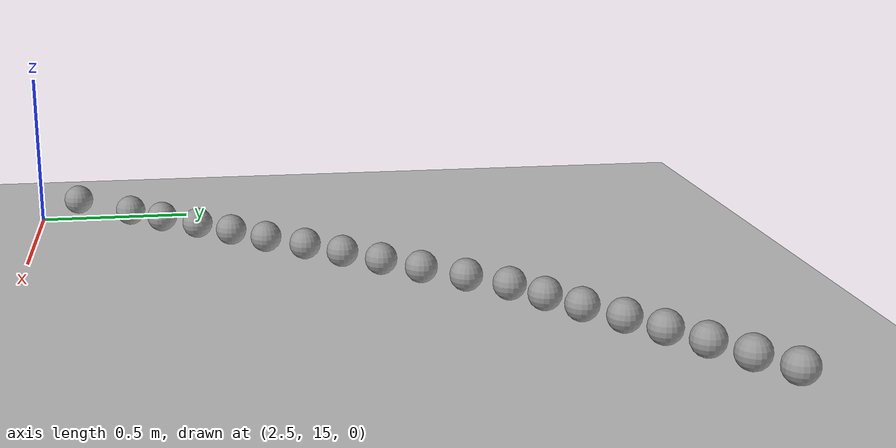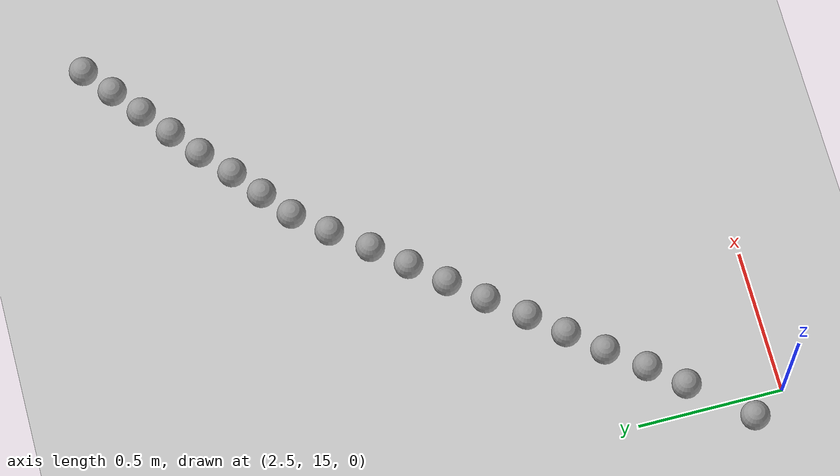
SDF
<sdf version="1.6">
 <world name="default">
  <model name="ground_plane">
   <static>1</static>
   <link name="link">
    <collision name="collision">
     <geometry><plane><normal>0 0 1</normal><size>100 100</size></plane></geometry>
     <surface><friction><ode><mu>100</mu><mu2>50</mu2></ode></friction></surface>
    </collision>
    <visual name="visual">
     <cast_shadows>0</cast_shadows>
     <geometry><plane><normal>0 0 1</normal><size>100 100</size></plane></geometry>
     <material>
      <script><uri>file://media/materials/scripts/gazebo.material</uri><name>Gazebo/Grey</name></script>
     </material>
    </visual>
   </link>
  </model>
  <model name="unit_sphere_0_79">
   <pose>2.427000 15.120000 0.050000 0 -0 0</pose>
   <link name="link">
    <inertial>
     <mass>1</mass>
     <inertia><ixx>0.1</ixx><ixy>0</ixy><ixz>0</ixz><iyy>0.1</iyy><iyz>0</iyz><izz>0.1</izz></inertia>
    </inertial>
    <collision name="collision"><geometry><sphere><radius>0.050000</radius></sphere></geometry></collision>
    <visual name="visual">
     <geometry><sphere><radius>0.050000</radius></sphere></geometry>
     <material>
      <script><name>Gazebo/Grey</name><uri>file://media/materials/scripts/gazebo.material</uri></script>
     </material>
    </visual>
   </link>
  </model>
  <model name="unit_sphere_0_80">
   <pose>2.590000 15.310000 0.050000 0 -0 0</pose>
   <link name="link">
    <inertial>
     <mass>1</mass>
     <inertia><ixx>0.1</ixx><ixy>0</ixy><ixz>0</ixz><iyy>0.1</iyy><iyz>0</iyz><izz>0.1</izz></inertia>
    </inertial>
    <collision name="collision"><geometry><sphere><radius>0.050000</radius></sphere></geometry></collision>
    <visual name="visual">
     <geometry><sphere><radius>0.050000</radius></sphere></geometry>
     <material>
      <script><name>Gazebo/Grey</name><uri>file://media/materials/scripts/gazebo.material</uri></script>
     </material>
    </visual>
   </link>
  </model>
  <model name="unit_sphere_0_81">
   <pose>2.682000 15.420000 0.050000 0 -0 0</pose>
   <link name="link">
    <inertial>
     <mass>1</mass>
     <inertia><ixx>0.1</ixx><ixy>0</ixy><ixz>0</ixz><iyy>0.1</iyy><iyz>0</iyz><izz>0.1</izz></inertia>
    </inertial>
    <collision name="collision"><geometry><sphere><radius>0.050000</radius></sphere></geometry></collision>
    <visual name="visual">
     <geometry><sphere><radius>0.050000</radius></sphere></geometry>
     <material>
      <script><name>Gazebo/Grey</name><uri>file://media/materials/scripts/gazebo.material</uri></script>
     </material>
    </visual>
   </link>
  </model>
  <model name="unit_sphere_0_82">
   <pose>2.774000 15.540000 0.050000 0 -0 0</pose>
   <link name="link">
    <inertial>
     <mass>1</mass>
     <inertia><ixx>0.1</ixx><ixy>0</ixy><ixz>0</ixz><iyy>0.1</iyy><iyz>0</iyz><izz>0.1</izz></inertia>
    </inertial>
    <collision name="collision"><geometry><sphere><radius>0.050000</radius></sphere></geometry></collision>
    <visual name="visual">
     <geometry><sphere><radius>0.050000</radius></sphere></geometry>
     <material>
      <script><name>Gazebo/Grey</name><uri>file://media/materials/scripts/gazebo.material</uri></script>
     </material>
    </visual>
   </link>
  </model>
  <model name="unit_sphere_0_83">
   <pose>2.866000 15.650000 0.050000 0 -0 0</pose>
   <link name="link">
    <inertial>
     <mass>1</mass>
     <inertia><ixx>0.1</ixx><ixy>0</ixy><ixz>0</ixz><iyy>0.1</iyy><iyz>0</iyz><izz>0.1</izz></inertia>
    </inertial>
    <collision name="collision"><geometry><sphere><radius>0.050000</radius></sphere></geometry></collision>
    <visual name="visual">
     <geometry><sphere><radius>0.050000</radius></sphere></geometry>
     <material>
      <script><name>Gazebo/Grey</name><uri>file://media/materials/scripts/gazebo.material</uri></script>
     </material>
    </visual>
   </link>
  </model>
  <model name="unit_sphere_0_84">
   <pose>2.958000 15.760000 0.050000 0 -0 0</pose>
   <link name="link">
    <inertial>
     <mass>1</mass>
     <inertia><ixx>0.1</ixx><ixy>0</ixy><ixz>0</ixz><iyy>0.1</iyy><iyz>0</iyz><izz>0.1</izz></inertia>
    </inertial>
    <collision name="collision"><geometry><sphere><radius>0.050000</radius></sphere></geometry></collision>
    <visual name="visual">
     <geometry><sphere><radius>0.050000</radius></sphere></geometry>
     <material>
      <script><name>Gazebo/Grey</name><uri>file://media/materials/scripts/gazebo.material</uri></script>
     </material>
    </visual>
   </link>
  </model>
  <model name="unit_sphere_0_85">
   <pose>3.050000 15.880000 0.050000 0 -0 0</pose>
   <link name="link">
    <inertial>
     <mass>1</mass>
     <inertia><ixx>0.1</ixx><ixy>0</ixy><ixz>0</ixz><iyy>0.1</iyy><iyz>0</iyz><izz>0.1</izz></inertia>
    </inertial>
    <collision name="collision"><geometry><sphere><radius>0.050000</radius></sphere></geometry></collision>
    <visual name="visual">
     <geometry><sphere><radius>0.050000</radius></sphere></geometry>
     <material>
      <script><name>Gazebo/Grey</name><uri>file://media/materials/scripts/gazebo.material</uri></script>
     </material>
    </visual>
   </link>
  </model>
  <model name="unit_sphere_0_86">
   <pose>3.142000 15.990000 0.050000 0 -0 0</pose>
   <link name="link">
    <inertial>
     <mass>1</mass>
     <inertia><ixx>0.1</ixx><ixy>0</ixy><ixz>0</ixz><iyy>0.1</iyy><iyz>0</iyz><izz>0.1</izz></inertia>
    </inertial>
    <collision name="collision"><geometry><sphere><radius>0.050000</radius></sphere></geometry></collision>
    <visual name="visual">
     <geometry><sphere><radius>0.050000</radius></sphere></geometry>
     <material>
      <script><name>Gazebo/Grey</name><uri>file://media/materials/scripts/gazebo.material</uri></script>
     </material>
    </visual>
   </link>
  </model>
  <model name="unit_sphere_0_87">
   <pose>3.234000 16.100000 0.050000 0 -0 0</pose>
   <link name="link">
    <inertial>
     <mass>1</mass>
     <inertia><ixx>0.1</ixx><ixy>0</ixy><ixz>0</ixz><iyy>0.1</iyy><iyz>0</iyz><izz>0.1</izz></inertia>
    </inertial>
    <collision name="collision"><geometry><sphere><radius>0.050000</radius></sphere></geometry></collision>
    <visual name="visual">
     <geometry><sphere><radius>0.050000</radius></sphere></geometry>
     <material>
      <script><name>Gazebo/Grey</name><uri>file://media/materials/scripts/gazebo.material</uri></script>
     </material>
    </visual>
   </link>
  </model>
  <model name="unit_sphere_0_88">
   <pose>3.326000 16.210000 0.050000 0 -0 0</pose>
   <link name="link">
    <inertial>
     <mass>1</mass>
     <inertia><ixx>0.1</ixx><ixy>0</ixy><ixz>0</ixz><iyy>0.1</iyy><iyz>0</iyz><izz>0.1</izz></inertia>
    </inertial>
    <collision name="collision"><geometry><sphere><radius>0.050000</radius></sphere></geometry></collision>
    <visual name="visual">
     <geometry><sphere><radius>0.050000</radius></sphere></geometry>
     <material>
      <script><name>Gazebo/Grey</name><uri>file://media/materials/scripts/gazebo.material</uri></script>
     </material>
    </visual>
   </link>
  </model>
  <model name="unit_sphere_0_89">
   <pose>3.418000 16.330000 0.050000 0 -0 0</pose>
   <link name="link">
    <inertial>
     <mass>1</mass>
     <inertia><ixx>0.1</ixx><ixy>0</ixy><ixz>0</ixz><iyy>0.1</iyy><iyz>0</iyz><izz>0.1</izz></inertia>
    </inertial>
    <collision name="collision"><geometry><sphere><radius>0.050000</radius></sphere></geometry></collision>
    <visual name="visual">
     <geometry><sphere><radius>0.050000</radius></sphere></geometry>
     <material>
      <script><name>Gazebo/Grey</name><uri>file://media/materials/scripts/gazebo.material</uri></script>
     </material>
    </visual>
   </link>
  </model>
  <model name="unit_sphere_0_90">
   <pose>3.510000 16.440000 0.050000 0 -0 0</pose>
   <link name="link">
    <inertial>
     <mass>1</mass>
     <inertia><ixx>0.1</ixx><ixy>0</ixy><ixz>0</ixz><iyy>0.1</iyy><iyz>0</iyz><izz>0.1</izz></inertia>
    </inertial>
    <collision name="collision"><geometry><sphere><radius>0.050000</radius></sphere></geometry></collision>
    <visual name="visual">
     <geometry><sphere><radius>0.050000</radius></sphere></geometry>
     <material>
      <script><name>Gazebo/Grey</name><uri>file://media/materials/scripts/gazebo.material</uri></script>
     </material>
    </visual>
   </link>
  </model>
  <model name="unit_sphere_0_91">
   <pose>3.609000 16.520000 0.050000 0 -0 0</pose>
   <link name="link">
    <inertial>
     <mass>1</mass>
     <inertia><ixx>0.1</ixx><ixy>0</ixy><ixz>0</ixz><iyy>0.1</iyy><iyz>0</iyz><izz>0.1</izz></inertia>
    </inertial>
    <collision name="collision"><geometry><sphere><radius>0.050000</radius></sphere></geometry></collision>
    <visual name="visual">
     <geometry><sphere><radius>0.050000</radius></sphere></geometry>
     <material>
      <script><name>Gazebo/Grey</name><uri>file://media/materials/scripts/gazebo.material</uri></script>
     </material>
    </visual>
   </link>
  </model>
  <model name="unit_sphere_0_92">
   <pose>3.708000 16.600000 0.050000 0 -0 0</pose>
   <link name="link">
    <inertial>
     <mass>1</mass>
     <inertia><ixx>0.1</ixx><ixy>0</ixy><ixz>0</ixz><iyy>0.1</iyy><iyz>0</iyz><izz>0.1</izz></inertia>
    </inertial>
    <collision name="collision"><geometry><sphere><radius>0.050000</radius></sphere></geometry></collision>
    <visual name="visual">
     <geometry><sphere><radius>0.050000</radius></sphere></geometry>
     <material>
      <script><name>Gazebo/Grey</name><uri>file://media/materials/scripts/gazebo.material</uri></script>
     </material>
    </visual>
   </link>
  </model>
  <model name="unit_sphere_0_93">
   <pose>3.807000 16.690000 0.050000 0 -0 0</pose>
   <link name="link">
    <inertial>
     <mass>1</mass>
     <inertia><ixx>0.1</ixx><ixy>0</ixy><ixz>0</ixz><iyy>0.1</iyy><iyz>0</iyz><izz>0.1</izz></inertia>
    </inertial>
    <collision name="collision"><geometry><sphere><radius>0.050000</radius></sphere></geometry></collision>
    <visual name="visual">
     <geometry><sphere><radius>0.050000</radius></sphere></geometry>
     <material>
      <script><name>Gazebo/Grey</name><uri>file://media/materials/scripts/gazebo.material</uri></script>
     </material>
    </visual>
   </link>
  </model>
  <model name="unit_sphere_0_94">
   <pose>3.906000 16.770000 0.050000 0 -0 0</pose>
   <link name="link">
    <inertial>
     <mass>1</mass>
     <inertia><ixx>0.1</ixx><ixy>0</ixy><ixz>0</ixz><iyy>0.1</iyy><iyz>0</iyz><izz>0.1</izz></inertia>
    </inertial>
    <collision name="collision"><geometry><sphere><radius>0.050000</radius></sphere></geometry></collision>
    <visual name="visual">
     <geometry><sphere><radius>0.050000</radius></sphere></geometry>
     <material>
      <script><name>Gazebo/Grey</name><uri>file://media/materials/scripts/gazebo.material</uri></script>
     </material>
    </visual>
   </link>
  </model>
  <model name="unit_sphere_0_95">
   <pose>4.005000 16.850000 0.050000 0 -0 0</pose>
   <link name="link">
    <inertial>
     <mass>1</mass>
     <inertia><ixx>0.1</ixx><ixy>0</ixy><ixz>0</ixz><iyy>0.1</iyy><iyz>0</iyz><izz>0.1</izz></inertia>
    </inertial>
    <collision name="collision"><geometry><sphere><radius>0.050000</radius></sphere></geometry></collision>
    <visual name="visual">
     <geometry><sphere><radius>0.050000</radius></sphere></geometry>
     <material>
      <script><name>Gazebo/Grey</name><uri>file://media/materials/scripts/gazebo.material</uri></script>
     </material>
    </visual>
   </link>
  </model>
  <model name="unit_sphere_0_96">
   <pose>4.104000 16.930000 0.050000 0 -0 0</pose>
   <link name="link">
    <inertial>
     <mass>1</mass>
     <inertia><ixx>0.1</ixx><ixy>0</ixy><ixz>0</ixz><iyy>0.1</iyy><iyz>0</iyz><izz>0.1</izz></inertia>
    </inertial>
    <collision name="collision"><geometry><sphere><radius>0.050000</radius></sphere></geometry></collision>
    <visual name="visual">
     <geometry><sphere><radius>0.050000</radius></sphere></geometry>
     <material>
      <script><name>Gazebo/Grey</name><uri>file://media/materials/scripts/gazebo.material</uri></script>
     </material>
    </visual>
   </link>
  </model>
  <model name="unit_sphere_0_97">
   <pose>4.203000 17.010000 0.050000 0 -0 0</pose>
   <link name="link">
    <inertial>
     <mass>1</mass>
     <inertia><ixx>0.1</ixx><ixy>0</ixy><ixz>0</ixz><iyy>0.1</iyy><iyz>0</iyz><izz>0.1</izz></inertia>
    </inertial>
    <collision name="collision"><geometry><sphere><radius>0.050000</radius></sphere></geometry></collision>
    <visual name="visual">
     <geometry><sphere><radius>0.050000</radius></sphere></geometry>
     <material>
      <script><name>Gazebo/Grey</name><uri>file://media/materials/scripts/gazebo.material</uri></script>
     </material>
    </visual>
   </link>
  </model>
 </world>
</sdf>
